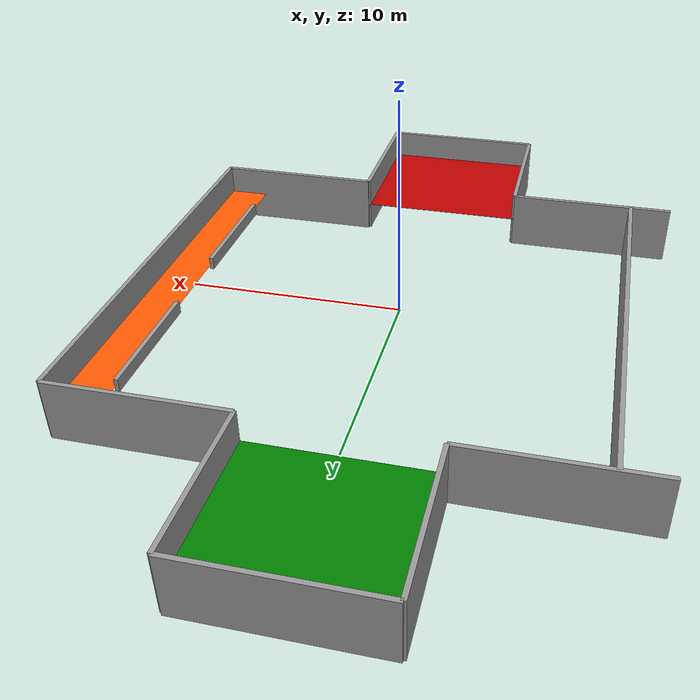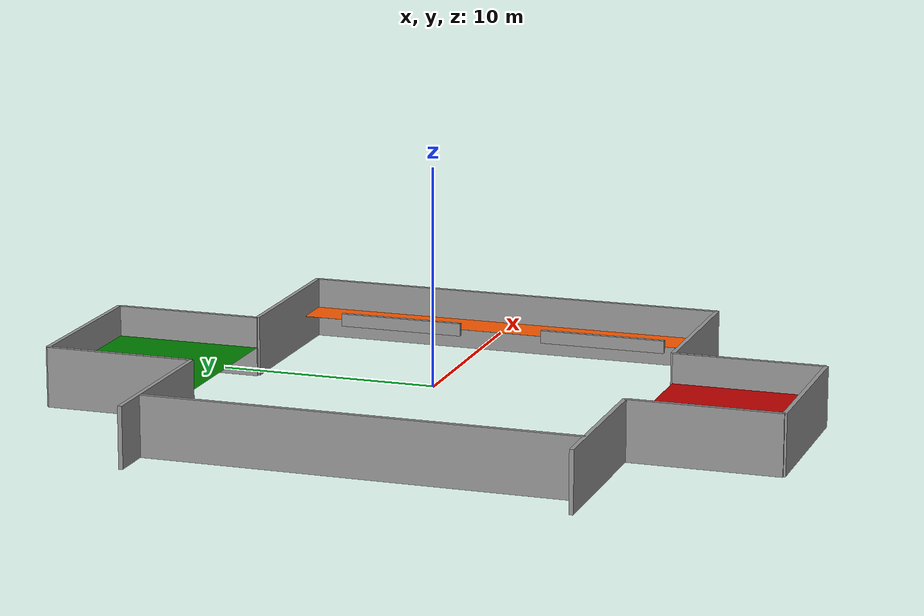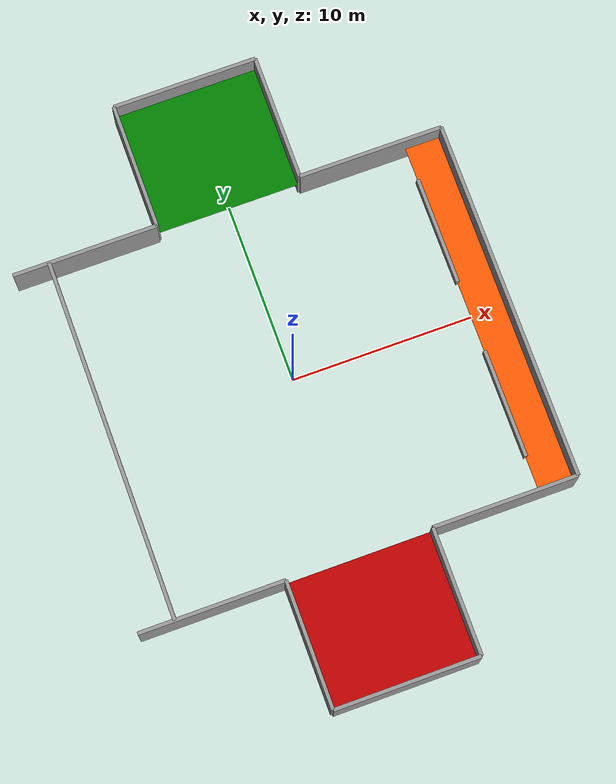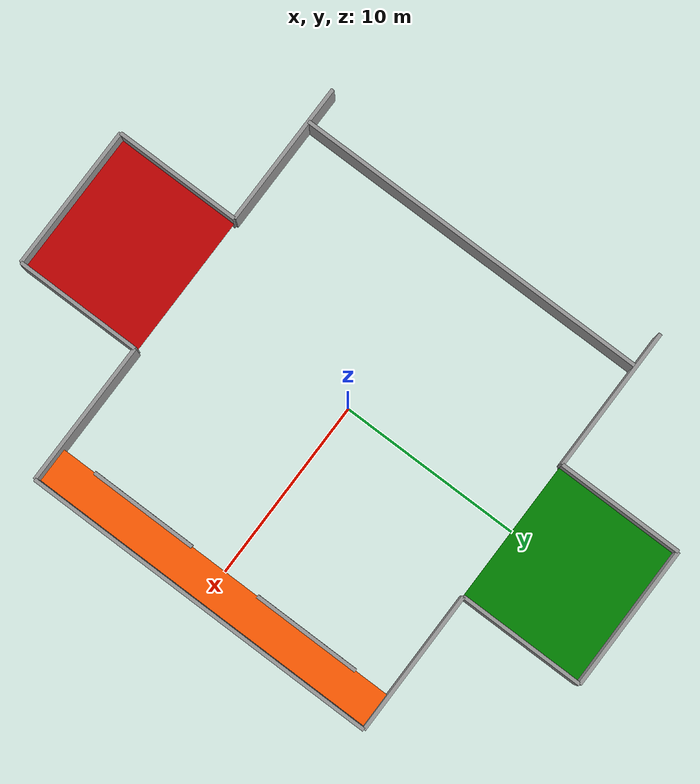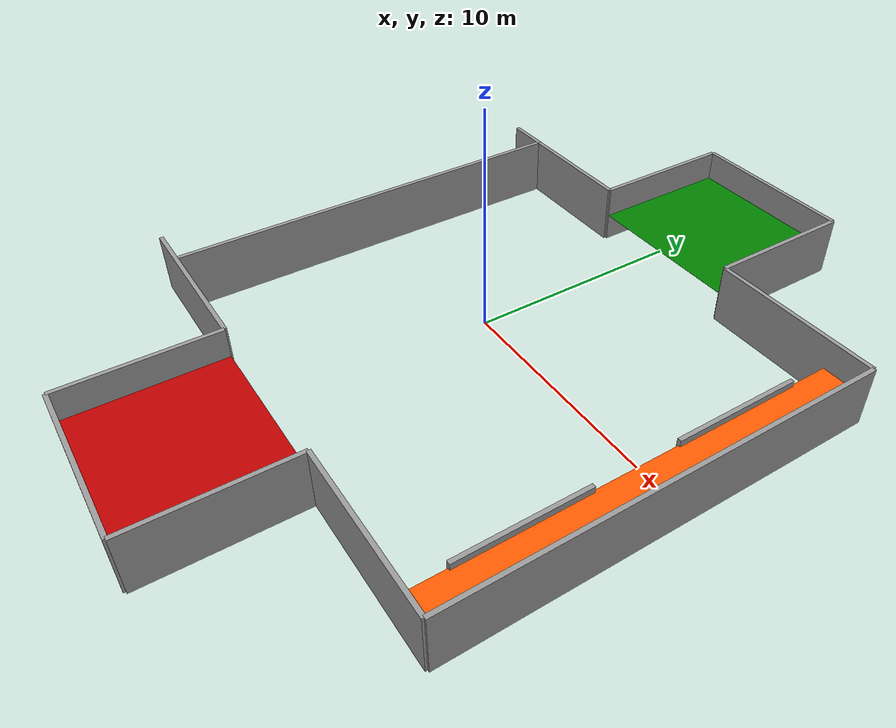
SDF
<?xml version="1.0" ?>
<sdf version="1.5">
  <model name="warehouse_walls">
    <static>true</static>

<!-- Wall 1 -->
    <link name="wall1_link">
      <name>wall1_link</name>
      <pose>-10 0 0 0 0 1.57</pose>
      <collision name="collision">
        <geometry>
          <box>
            <size>20 0.2 2.8</size>
          </box>
        </geometry>
      </collision>
      <visual name="wall1_visual">
        <cast_shadows>false</cast_shadows>
        <geometry>
          <box>
            <size>20 0.2 2.8</size>
          </box>
        </geometry>
        <material>
          <script>
            <uri>model://grey_wall/materials/scripts</uri>
            <uri>model://grey_wall/materials/textures</uri>
            <name>vrc/grey_wall</name>
          </script>
        </material>
      </visual>
    </link>

<!-- Wall 2 -->
    <link name="wall2_link2">
      <name>wall2_link2</name>
      <pose>8 -10 0 0 0 0</pose>
      <collision name="wall2_collision2">
        <geometry>
          <box>
            <size>8 0.2 2.8</size>
          </box>
        </geometry>
      </collision>
      <visual name="wall2_visual2">
        <cast_shadows>false</cast_shadows>
        <geometry>
          <box>
            <size>8 0.2 2.8</size>
          </box>
        </geometry>
        <material>
          <script>
            <uri>model://grey_wall/materials/scripts</uri>
            <uri>model://grey_wall/materials/textures</uri>
            <name>vrc/grey_wall</name>
          </script>
        </material>
      </visual>
    </link>

    <link name="wall2_link3">
      <name>wall2_link3</name>
      <pose>4 -13.5 0 0 0 1.57</pose>
      <collision name="wall2_collision3">
        <geometry>
          <box>
            <size>7 0.2 2.8</size>
          </box>
        </geometry>
      </collision>
      <visual name="wall2_visual3">
        <cast_shadows>false</cast_shadows>
        <geometry>
          <box>
            <size>7 0.2 2.8</size>
          </box>
        </geometry>
        <material>
          <script>
            <uri>model://grey_wall/materials/scripts</uri>
            <uri>model://grey_wall/materials/textures</uri>
            <name>vrc/grey_wall</name>
          </script>
        </material>
      </visual>
    </link>

    <link name="wall2_link4">
      <name>wall2_link4</name>
      <pose>0 -17 0 0 0 0</pose>
      <collision name="wall2_collision4">
        <geometry>
          <box>
            <size>8 0.2 2.8</size>
          </box>
        </geometry>
      </collision>
      <visual name="wall2_visual4">
        <cast_shadows>false</cast_shadows>
        <geometry>
          <box>
            <size>8 0.2 2.8</size>
          </box>
        </geometry>
        <material>
          <script>
            <uri>model://grey_wall/materials/scripts</uri>
            <uri>model://grey_wall/materials/textures</uri>
            <name>vrc/grey_wall</name>
          </script>
        </material>
      </visual>
    </link>

    <link name="wall2_link5">
      <name>wall2_link5</name>
      <pose>-4 -13.5 0 0 0 1.57</pose>
      <collision name="wall2_collision5">
        <geometry>
          <box>
            <size>7 0.2 2.8</size>
          </box>
        </geometry>
      </collision>
      <visual name="wall2_visual5">
        <cast_shadows>false</cast_shadows>
        <geometry>
          <box>
            <size>7 0.2 2.8</size>
          </box>
        </geometry>
        <material>
          <script>
            <uri>model://grey_wall/materials/scripts</uri>
            <uri>model://grey_wall/materials/textures</uri>
            <name>vrc/grey_wall</name>
          </script>
        </material>
      </visual>
    </link>

    <link name="wall2_link6">
      <name>wall2_link6</name>
      <pose>-8 -10 0 0 0 0</pose>
      <collision name="wall2_collision6">
        <geometry>
          <box>
            <size>8 0.2 2.8</size>
          </box>
        </geometry>
      </collision>
      <visual name="wall2_visual6">
        <cast_shadows>false</cast_shadows>
        <geometry>
          <box>
            <size>8 0.2 2.8</size>
          </box>
        </geometry>
        <material>
          <script>
            <uri>model://grey_wall/materials/scripts</uri>
            <uri>model://grey_wall/materials/textures</uri>
            <name>vrc/grey_wall</name>
          </script>
        </material>
      </visual>
    </link>

<!--Lets also add Output Area Visual to be green color-->

    <link name="output_area_0">
      <name>output_area_0</name>
      <pose>0 13.5 0 0 0 0</pose>
	  <visual name='visual_output_area_0'>
		<cast_shadows>false</cast_shadows>
		<geometry>
		  <plane>
		    <normal>0 0 1</normal>
		    <size>8 7</size>
		  </plane>
		</geometry>
	  <material>
	    <ambient>0 0.5 0 1</ambient>
	    <diffuse>0 0.5 0 1</diffuse>
	    <specular>0 0 0 1</specular>
	    <emissive>0 0 0 0</emissive>
	  </material>
	  </visual>
    </link>

<!-- Wall 3 -->
    <link name="wall3_link2">
      <name>wall3_link2</name>
      <pose>8 10 0 0 0 0</pose>
      <collision name="wall3_collision2">
        <geometry>
          <box>
            <size>8 0.2 2.8</size>
          </box>
        </geometry>
      </collision>
      <visual name="wall3_visual2">
        <cast_shadows>false</cast_shadows>
        <geometry>
          <box>
            <size>8 0.2 2.8</size>
          </box>
        </geometry>
        <material>
          <script>
            <uri>model://grey_wall/materials/scripts</uri>
            <uri>model://grey_wall/materials/textures</uri>
            <name>vrc/grey_wall</name>
          </script>
        </material>
      </visual>
    </link>

    <link name="wall3_link3">
      <name>wall3_link3</name>
      <pose>4 13.5 0 0 0 1.57</pose>
      <collision name="wall3_collision3">
        <geometry>
          <box>
            <size>7 0.2 2.8</size>
          </box>
        </geometry>
      </collision>
      <visual name="wall3_visual3">
        <cast_shadows>false</cast_shadows>
        <geometry>
          <box>
            <size>7 0.2 2.8</size>
          </box>
        </geometry>
        <material>
          <script>
            <uri>model://grey_wall/materials/scripts</uri>
            <uri>model://grey_wall/materials/textures</uri>
            <name>vrc/grey_wall</name>
          </script>
        </material>
      </visual>
    </link>

    <link name="wall3_link4">
      <name>wall3_link4</name>
      <pose>0 17 0 0 0 0</pose>
      <collision name="wall3_collision4">
        <geometry>
          <box>
            <size>8 0.2 2.8</size>
          </box>
        </geometry>
      </collision>
      <visual name="wall3_visual4">
        <cast_shadows>false</cast_shadows>
        <geometry>
          <box>
            <size>8 0.2 2.8</size>
          </box>
        </geometry>
        <material>
          <script>
            <uri>model://grey_wall/materials/scripts</uri>
            <uri>model://grey_wall/materials/textures</uri>
            <name>vrc/grey_wall</name>
          </script>
        </material>
      </visual>
    </link>

    <link name="wall3_link5">
      <name>wall3_link5</name>
      <pose>-4 13.5 0 0 0 1.57</pose>
      <collision name="wall3_collision5">
        <geometry>
          <box>
            <size>7 0.2 2.8</size>
          </box>
        </geometry>
      </collision>
      <visual name="wall3_visual5">
        <cast_shadows>false</cast_shadows>
        <geometry>
          <box>
            <size>7 0.2 2.8</size>
          </box>
        </geometry>
        <material>
          <script>
            <uri>model://grey_wall/materials/scripts</uri>
            <uri>model://grey_wall/materials/textures</uri>
            <name>vrc/grey_wall</name>
          </script>
        </material>
      </visual>
    </link>

    <link name="wall3_link6">
      <name>wall3_link6</name>
      <pose>-8 10 0 0 0 0</pose>
      <collision name="wall3_collision6">
        <geometry>
          <box>
            <size>8 0.2 2.8</size>
          </box>
        </geometry>
      </collision>
      <visual name="wall3_visual6">
        <cast_shadows>false</cast_shadows>
        <geometry>
          <box>
            <size>8 0.2 2.8</size>
          </box>
        </geometry>
        <material>
          <script>
            <uri>model://grey_wall/materials/scripts</uri>
            <uri>model://grey_wall/materials/textures</uri>
            <name>vrc/grey_wall</name>
          </script>
        </material>
      </visual>
    </link>

<!--Lets also add Input Area Visual to be Red color-->

    <link name="output_area_1">
      <name>output_area_1</name>
      <pose>0 -13.5 0 0 0 0</pose>
	  <visual name='visual_output_area_1'>
		<cast_shadows>false</cast_shadows>
		<geometry>
		  <plane>
		    <normal>0 0 1</normal>
		    <size>8 7</size>
		  </plane>
		</geometry>
	  <material>
	    <ambient>0.75 0 0 1</ambient>
	    <diffuse>0.75 0 0 1</diffuse>
	    <specular>0 0 0 1</specular>
	    <emissive>0 0 0 0</emissive>
	  </material>
	  </visual>
    </link>

<!-- Wall 4 -->
    <link name="wall4_link">
      <name>wall4_link4</name>
      <pose>12 0 0 0 0 1.57</pose>
      <collision name="wall4_collision">
        <geometry>
          <box>
            <size>20 0.2 2.8</size>
          </box>
        </geometry>
      </collision>
      <visual name="wall4_visual">
        <cast_shadows>false</cast_shadows>
        <geometry>
          <box>
            <size>20 0.2 2.8</size>
          </box>
        </geometry>
        <material>
          <script>
            <uri>model://grey_wall/materials/scripts</uri>
            <uri>model://grey_wall/materials/textures</uri>
            <name>vrc/grey_wall</name>
          </script>
        </material>
      </visual>
    </link>

<!-- Resting Area Walls -->
    <link name="wall5_link1">
      <name>wall5_link1</name>
      <pose>10 -5 0 0 0 1.57</pose>
      <collision name="wall5_collision1">
        <geometry>
          <box>
            <size>6 0.2 0.6</size>
          </box>
        </geometry>
      </collision>
      <visual name="wall5_visual1">
        <cast_shadows>false</cast_shadows>
        <geometry>
          <box>
            <size>6 0.2 0.6</size>
          </box>
        </geometry>
        <material>
          <script>
            <uri>model://grey_wall/materials/scripts</uri>
            <uri>model://grey_wall/materials/textures</uri>
            <name>vrc/grey_wall</name>
          </script>
        </material>
      </visual>
    </link>

    <link name="wall5_link2">
      <name>wall5_link2</name>
      <pose>10 5 0 0 0 1.57</pose>
      <collision name="wall5_collision2">
        <geometry>
          <box>
            <size>6 0.2 0.6</size>
          </box>
        </geometry>
      </collision>
      <visual name="wall5_visual2">
        <cast_shadows>false</cast_shadows>
        <geometry>
          <box>
            <size>6 0.2 0.6</size>
          </box>
        </geometry>
        <material>
          <script>
            <uri>model://grey_wall/materials/scripts</uri>
            <uri>model://grey_wall/materials/textures</uri>
            <name>vrc/grey_wall</name>
          </script>
        </material>
      </visual>
    </link>

<!--Lets also add Resting Area Visual to be a darker orange color-->

    <link name="resting_area">
      <name>resting_area_2</name>
      <pose>11 0 0 0 0 1.57</pose>
	  <visual name='visual_resting_area'>
		<cast_shadows>false</cast_shadows>
		<geometry>
		  <plane>
		    <normal>0 0 1</normal>
		    <size>20 2</size>
		  </plane>
		</geometry>
	  <material>
	    <ambient>1 0.35 0 1</ambient>
	    <diffuse>1 0.35 0 1</diffuse>
	    <specular>0 0 0 1</specular>
	    <emissive>0 0 0 0</emissive>
	  </material>
	  </visual>
    </link>

  </model>
</sdf>
